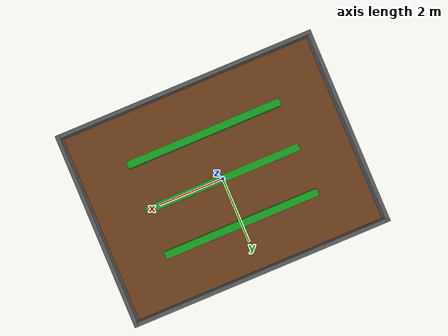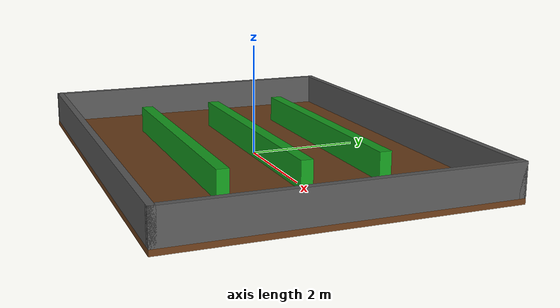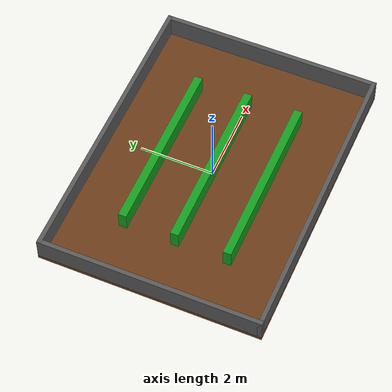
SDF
<?xml version="1.0"?>
<sdf version="1.6">
  <world name="spore_patrol_farmland_8x6">
    <gravity>0 0 -9.8</gravity>
    <physics type="ode">
      <real_time_update_rate>1000</real_time_update_rate>
      <max_step_size>0.001</max_step_size>
    </physics>

    <include>
      <uri>model://sun</uri>
    </include>

    <!-- Canonical Stage C field: 8 m in x, 6 m in y. -->
    <model name="soil">
      <static>true</static>
      <pose>0 0 -0.05 0 0 0</pose>
      <link name="soil_link">
        <collision name="soil_collision">
          <geometry>
            <box><size>8.0 6.0 0.10</size></box>
          </geometry>
        </collision>
        <visual name="soil_visual">
          <geometry>
            <box><size>8.0 6.0 0.10</size></box>
          </geometry>
          <material>
            <ambient>0.30 0.17 0.08 1</ambient>
            <diffuse>0.42 0.24 0.10 1</diffuse>
          </material>
        </visual>
      </link>
    </model>

    <!-- Low, continuous field boundaries give the first map a closed reference. -->
    <model name="field_boundary_west">
      <static>true</static>
      <pose>-3.94 0 0.30 0 0 0</pose>
      <link name="boundary">
        <collision name="collision"><geometry><box><size>0.12 6.0 0.60</size></box></geometry></collision>
        <visual name="visual"><geometry><box><size>0.12 6.0 0.60</size></box></geometry><material><ambient>0.24 0.24 0.24 1</ambient><diffuse>0.35 0.35 0.35 1</diffuse></material></visual>
      </link>
    </model>
    <model name="field_boundary_east">
      <static>true</static>
      <pose>3.94 0 0.30 0 0 0</pose>
      <link name="boundary">
        <collision name="collision"><geometry><box><size>0.12 6.0 0.60</size></box></geometry></collision>
        <visual name="visual"><geometry><box><size>0.12 6.0 0.60</size></box></geometry><material><ambient>0.24 0.24 0.24 1</ambient><diffuse>0.35 0.35 0.35 1</diffuse></material></visual>
      </link>
    </model>
    <model name="field_boundary_south">
      <static>true</static>
      <pose>0 -2.94 0.30 0 0 0</pose>
      <link name="boundary">
        <collision name="collision"><geometry><box><size>8.0 0.12 0.60</size></box></geometry></collision>
        <visual name="visual"><geometry><box><size>8.0 0.12 0.60</size></box></geometry><material><ambient>0.24 0.24 0.24 1</ambient><diffuse>0.35 0.35 0.35 1</diffuse></material></visual>
      </link>
    </model>
    <model name="field_boundary_north">
      <static>true</static>
      <pose>0 2.94 0.30 0 0 0</pose>
      <link name="boundary">
        <collision name="collision"><geometry><box><size>8.0 0.12 0.60</size></box></geometry></collision>
        <visual name="visual"><geometry><box><size>8.0 0.12 0.60</size></box></geometry><material><ambient>0.24 0.24 0.24 1</ambient><diffuse>0.35 0.35 0.35 1</diffuse></material></visual>
      </link>
    </model>

    <!-- Three parallel crop rows. Adjacent clear corridor is 1.42 - 0.22 = 1.20 m. -->
    <model name="crop_row_1">
      <static>true</static>
      <pose>0 -1.42 0.25 0 0 0</pose>
      <link name="row">
        <collision name="collision"><geometry><box><size>4.80 0.22 0.50</size></box></geometry></collision>
        <visual name="visual"><geometry><box><size>4.80 0.22 0.50</size></box></geometry><material><ambient>0.05 0.35 0.08 1</ambient><diffuse>0.08 0.62 0.12 1</diffuse></material></visual>
      </link>
    </model>
    <model name="crop_row_2">
      <static>true</static>
      <pose>0 0 0.25 0 0 0</pose>
      <link name="row">
        <collision name="collision"><geometry><box><size>4.80 0.22 0.50</size></box></geometry></collision>
        <visual name="visual"><geometry><box><size>4.80 0.22 0.50</size></box></geometry><material><ambient>0.05 0.35 0.08 1</ambient><diffuse>0.08 0.62 0.12 1</diffuse></material></visual>
      </link>
    </model>
    <model name="crop_row_3">
      <static>true</static>
      <pose>0 1.42 0.25 0 0 0</pose>
      <link name="row">
        <collision name="collision"><geometry><box><size>4.80 0.22 0.50</size></box></geometry></collision>
        <visual name="visual"><geometry><box><size>4.80 0.22 0.50</size></box></geometry><material><ambient>0.05 0.35 0.08 1</ambient><diffuse>0.08 0.62 0.12 1</diffuse></material></visual>
      </link>
    </model>

    <!-- No static obstacle in the first mapping pass; add one only as a follow-up scenario. -->
    <gui fullscreen="0">
      <camera name="overview">
        <pose>-7.5 -7.0 7.0 0 0.55 0.78</pose>
        <view_controller>orbit</view_controller>
      </camera>
    </gui>
  </world>
</sdf>
